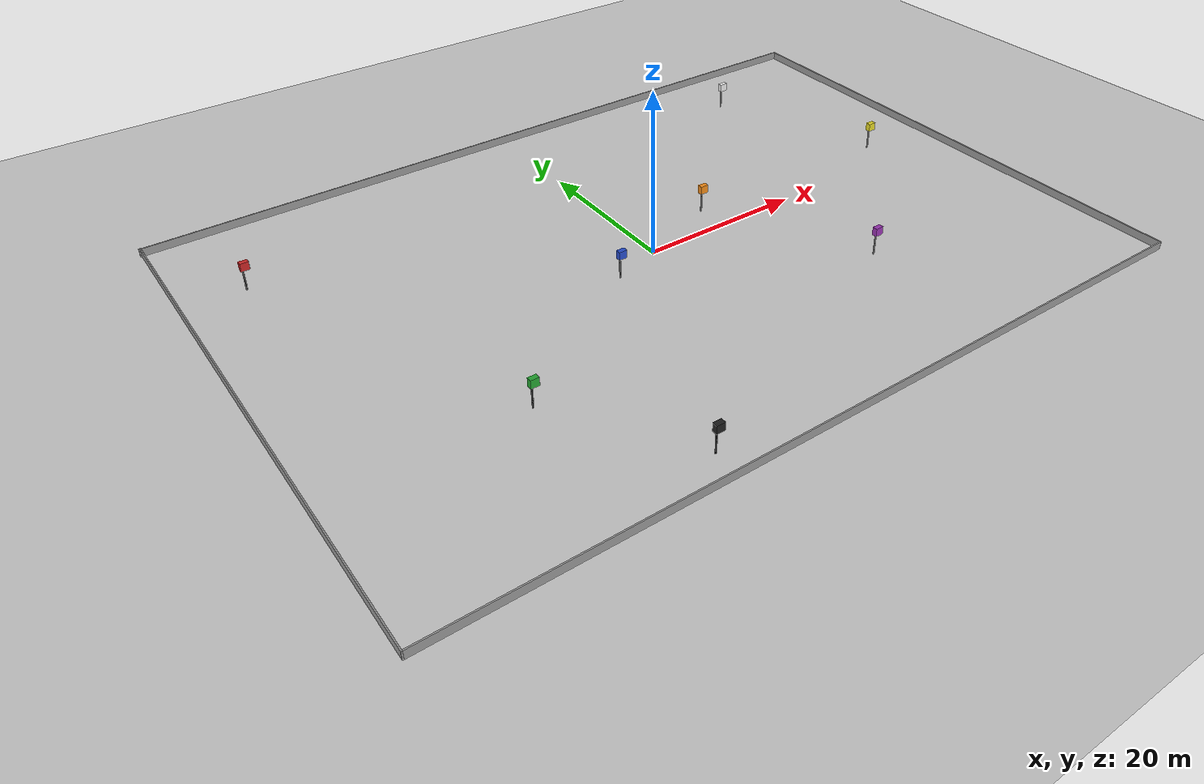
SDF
<?xml version="1.0" encoding="UTF-8"?>
<sdf version="1.4">
  <world name="default">
    <!-- *********************INITIAL POSE OF THE CAMERA***************************** -->
		<gui>
      <camera name="main_cam">
        <pose>1.15 -71.8 70 0 0.8 1.57</pose>
      </camera>
    </gui>

    <!-- *********************GROUND AND SUN***************************** -->
    <include>
      <uri>model://ground_plane</uri>
    </include>

    <include>
      <uri>model://sun</uri>
    </include>

    <!-- *********************FLAGS***************************** -->
    <include>
      <uri>model://red_flag</uri>
      <name>flag_1</name>
      <pose>-40 20 0 0 0 0</pose>
    </include>

    <include>
      <uri>model://green_flag</uri>
      <name>flag_2</name>
      <pose>-25 -15 0 0 0 0</pose>
    </include>

    <include>
      <uri>model://blue_flag</uri>
      <name>flag_3</name>
      <pose>-6 -2 0 0 0 0</pose>
    </include>

    <include>
      <uri>model://black_flag</uri>
      <name>flag_4</name>
      <pose>-15 -30 0 0 0 0</pose>
    </include>

    <include>
      <uri>model://orange_flag</uri>
      <name>flag_5</name>
      <pose>10 4 0 0 0 0</pose>
    </include>

    <include>
      <uri>model://purple_flag</uri>
      <name>flag_6</name>
      <pose>20 -15 0 0 0 0</pose>
    </include>

    <include>
      <uri>model://white_flag</uri>
      <name>flag_7</name>
      <pose>30 25 0 0 0 0</pose>
    </include>

    <include>
      <uri>model://yellow_flag</uri>
      <name>flag_8</name>
      <pose>38 4 0 0 0 0</pose>
    </include>

    <!-- **********************DISTANCE TO FLAGS PLUGIN**************************** -->
    <plugin name="dtfPlugin" filename="libdist_to_flag.so">
      <nb_flags>8</nb_flags>
    </plugin>

    <!-- **********************WALLS**************************** -->
    <include>
      <uri>model://walls</uri>
      <name>limits</name>
      <pose>0 0 0 0 0 0</pose>
    </include>
  </world>
</sdf>

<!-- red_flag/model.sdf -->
<sdf version="1.4">
  <model name="flag">
    <static>true</static>
    <link name="flag">
      <visual name="base">
        <pose>0 0 1.5 0 0 0</pose>
        <geometry>
          <cylinder>
            <radius>0.1</radius>
            <length>3</length>
          </cylinder>
        </geometry>

        <!-- BLACK -->
        <material>
          <ambient>0 0 0 1</ambient>
        </material>
      </visual>

      <visual name="top">
        <pose>0.25 0 3 0 0 0</pose>
        <geometry>
          <box>
            <size>1 0.6 1</size>
          </box>
        </geometry>

        <!-- RED -->
        <material>
          <script>
            <uri>file://media/materials/scripts/gazebo.material</uri>
            <name>Gazebo/Red</name>
          </script>
        </material>

      </visual>
    </link>
  </model>
</sdf>

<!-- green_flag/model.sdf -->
<sdf version="1.4">
  <model name="flag">
    <static>true</static>
    <link name="flag">
      <visual name="base">
        <pose>0 0 1.5 0 0 0</pose>
        <geometry>
          <cylinder>
            <radius>0.1</radius>
            <length>3</length>
          </cylinder>
        </geometry>

        <!-- BLACK -->
        <material>
          <ambient>0 0 0 1</ambient>
        </material>
      </visual>

      <visual name="top">
        <pose>0.25 0 3 0 0 0</pose>
        <geometry>
          <box>
            <size>1 0.6 1</size>
          </box>
        </geometry>

        <!-- GREEN -->
        <material>
          <script>
            <uri>file://media/materials/scripts/gazebo.material</uri>
            <name>Gazebo/Green</name>
          </script>
        </material>

      </visual>
    </link>
  </model>
</sdf>

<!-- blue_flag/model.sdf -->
<sdf version="1.4">
  <model name="flag">
    <static>true</static>
    <link name="flag">
      <visual name="base">
        <pose>0 0 1.5 0 0 0</pose>
        <geometry>
          <cylinder>
            <radius>0.1</radius>
            <length>3</length>
          </cylinder>
        </geometry>

        <!-- BLACK -->
        <material>
          <ambient>0 0 0 1</ambient>
        </material>
      </visual>

      <visual name="top">
        <pose>0.25 0 3 0 0 0</pose>
        <geometry>
          <box>
            <size>1 0.6 1</size>
          </box>
        </geometry>

        <!-- BLUE -->
        <material>
          <script>
            <uri>file://media/materials/scripts/gazebo.material</uri>
            <name>Gazebo/Blue</name>
          </script>
        </material>

      </visual>
    </link>
  </model>
</sdf>

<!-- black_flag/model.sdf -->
<sdf version="1.4">
  <model name="flag">
    <static>true</static>
    <link name="flag">
      <visual name="base">
        <pose>0 0 1.5 0 0 0</pose>
        <geometry>
          <cylinder>
            <radius>0.1</radius>
            <length>3</length>
          </cylinder>
        </geometry>

        <!-- BLACK -->
        <material>
          <ambient>0 0 0 1</ambient>
        </material>
      </visual>

      <visual name="top">
        <pose>0.25 0 3 0 0 0</pose>
        <geometry>
          <box>
            <size>1 0.6 1</size>
          </box>
        </geometry>

        <!-- BLACK -->
        <material>
          <script>
            <uri>file://media/materials/scripts/gazebo.material</uri>
            <name>Gazebo/Black</name>
          </script>
        </material>

      </visual>
    </link>
  </model>
</sdf>

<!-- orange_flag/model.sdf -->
<sdf version="1.4">
  <model name="flag">
    <static>true</static>
    <link name="flag">
      <visual name="base">
        <pose>0 0 1.5 0 0 0</pose>
        <geometry>
          <cylinder>
            <radius>0.1</radius>
            <length>3</length>
          </cylinder>
        </geometry>

        <!-- BLACK -->
        <material>
          <ambient>0 0 0 1</ambient>
        </material>
      </visual>

      <visual name="top">
        <pose>0.25 0 3 0 0 0</pose>
        <geometry>
          <box>
            <size>1 0.6 1</size>
          </box>
        </geometry>

        <!-- ORANGE -->
        <material>
          <script>
            <uri>file://media/materials/scripts/gazebo.material</uri>
            <name>Gazebo/Orange</name>
          </script>
        </material>

      </visual>
    </link>
  </model>
</sdf>

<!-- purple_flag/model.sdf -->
<sdf version="1.4">
  <model name="flag">
    <static>true</static>
    <link name="flag">
      <visual name="base">
        <pose>0 0 1.5 0 0 0</pose>
        <geometry>
          <cylinder>
            <radius>0.1</radius>
            <length>3</length>
          </cylinder>
        </geometry>

        <!-- BLACK -->
        <material>
          <ambient>0 0 0 1</ambient>
        </material>
      </visual>

      <visual name="top">
        <pose>0.25 0 3 0 0 0</pose>
        <geometry>
          <box>
            <size>1 0.6 1</size>
          </box>
        </geometry>

        <!-- PURPLE -->
        <material>
          <script>
            <uri>file://media/materials/scripts/gazebo.material</uri>
            <name>Gazebo/Purple</name>
          </script>
        </material>

      </visual>
    </link>
  </model>
</sdf>

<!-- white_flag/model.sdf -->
<sdf version="1.4">
  <model name="flag">
    <static>true</static>
    <link name="flag">
      <visual name="base">
        <pose>0 0 1.5 0 0 0</pose>
        <geometry>
          <cylinder>
            <radius>0.1</radius>
            <length>3</length>
          </cylinder>
        </geometry>

        <!-- BLACK -->
        <material>
          <ambient>0 0 0 1</ambient>
        </material>
      </visual>

      <visual name="top">
        <pose>0.25 0 3 0 0 0</pose>
        <geometry>
          <box>
            <size>1 0.6 1</size>
          </box>
        </geometry>

        <!-- WHITE -->
        <material>
          <script>
            <uri>file://media/materials/scripts/gazebo.material</uri>
            <name>Gazebo/White</name>
          </script>
        </material>

      </visual>
    </link>
  </model>
</sdf>

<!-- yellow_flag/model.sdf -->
<sdf version="1.4">
  <model name="flag">
    <static>true</static>
    <link name="flag">
      <visual name="base">
        <pose>0 0 1.5 0 0 0</pose>
        <geometry>
          <cylinder>
            <radius>0.1</radius>
            <length>3</length>
          </cylinder>
        </geometry>

        <!-- BLACK -->
        <material>
          <ambient>0 0 0 1</ambient>
        </material>
      </visual>

      <visual name="top">
        <pose>0.25 0 3 0 0 0</pose>
        <geometry>
          <box>
            <size>1 0.6 1</size>
          </box>
        </geometry>

        <!-- YELLOW -->
        <material>
          <script>
            <uri>file://media/materials/scripts/gazebo.material</uri>
            <name>Gazebo/Yellow</name>
          </script>
        </material>

      </visual>
    </link>
  </model>
</sdf>

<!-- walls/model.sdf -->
<sdf version='1.6'>
  <model name='walls'>
    <pose frame=''>0.580204 -5.79028 0 0 -0 0</pose>
    <link name='Wall_0'>
      <collision name='Wall_0_Collision'>
        <geometry>
          <box>
            <size>95 0.15 1</size>
          </box>
        </geometry>
        <pose frame=''>0 0 0.5 0 -0 0</pose>
      </collision>
      <visual name='Wall_0_Visual'>
        <pose frame=''>0 0 0.5 0 -0 0</pose>
        <geometry>
          <box>
            <size>95 0.15 1</size>
          </box>
        </geometry>
        <material>
          <script>
            <uri>file://media/materials/scripts/gazebo.material</uri>
            <name>Gazebo/Grey</name>
          </script>
          <ambient>1 1 1 1</ambient>
        </material>
        <meta>
          <layer>0</layer>
        </meta>
      </visual>
      <pose frame=''>-0.000204 33.4423 0 0 -0 0</pose>
    </link>
    <link name='Wall_1'>
      <collision name='Wall_1_Collision'>
        <geometry>
          <box>
            <size>67.1433 0.15 1</size>
          </box>
        </geometry>
        <pose frame=''>0 0 0.5 0 -0 0</pose>
      </collision>
      <visual name='Wall_1_Visual'>
        <pose frame=''>0 0 0.5 0 -0 0</pose>
        <geometry>
          <box>
            <size>67.1433 0.15 1</size>
          </box>
        </geometry>
        <material>
          <script>
            <uri>file://media/materials/scripts/gazebo.material</uri>
            <name>Gazebo/Grey</name>
          </script>
          <ambient>1 1 1 1</ambient>
        </material>
        <meta>
          <layer>0</layer>
        </meta>
      </visual>
      <pose frame=''>47.2433 -0.053719 0 0 -0 -1.57621</pose>
    </link>
    <link name='Wall_2'>
      <collision name='Wall_2_Collision'>
        <geometry>
          <box>
            <size>94.5 0.15 1</size>
          </box>
        </geometry>
        <pose frame=''>0 0 0.5 0 -0 0</pose>
      </collision>
      <visual name='Wall_2_Visual'>
        <pose frame=''>0 0 0.5 0 -0 0</pose>
        <geometry>
          <box>
            <size>94.5 0.15 1</size>
          </box>
        </geometry>
        <material>
          <script>
            <uri>file://media/materials/scripts/gazebo.material</uri>
            <name>Gazebo/Grey</name>
          </script>
          <ambient>1 1 1 1</ambient>
        </material>
        <meta>
          <layer>0</layer>
        </meta>
      </visual>
      <pose frame=''>-0.113204 -33.5497 0 0 -0 3.14159</pose>
    </link>
    <link name='Wall_3'>
      <collision name='Wall_3_Collision'>
        <geometry>
          <box>
            <size>67.25 0.15 1</size>
          </box>
        </geometry>
        <pose frame=''>0 0 0.5 0 -0 0</pose>
      </collision>
      <visual name='Wall_3_Visual'>
        <pose frame=''>0 0 0.5 0 -0 0</pose>
        <geometry>
          <box>
            <size>67.25 0.15 1</size>
          </box>
        </geometry>
        <material>
          <script>
            <uri>file://media/materials/scripts/gazebo.material</uri>
            <name>Gazebo/Grey</name>
          </script>
          <ambient>1 1 1 1</ambient>
        </material>
        <meta>
          <layer>0</layer>
        </meta>
      </visual>
      <pose frame=''>-47.2882 0.000281 0 0 -0 1.5708</pose>
    </link>
    <static>1</static>
  </model>
</sdf>
